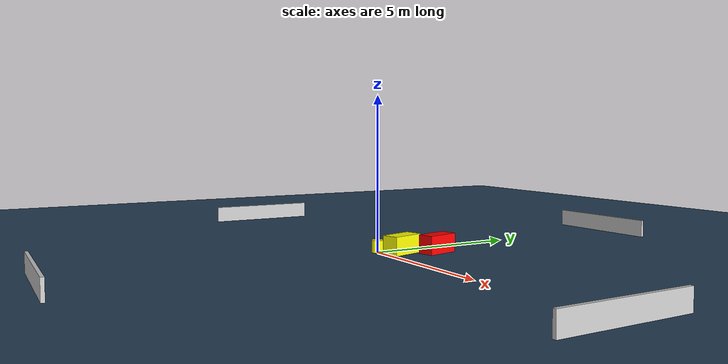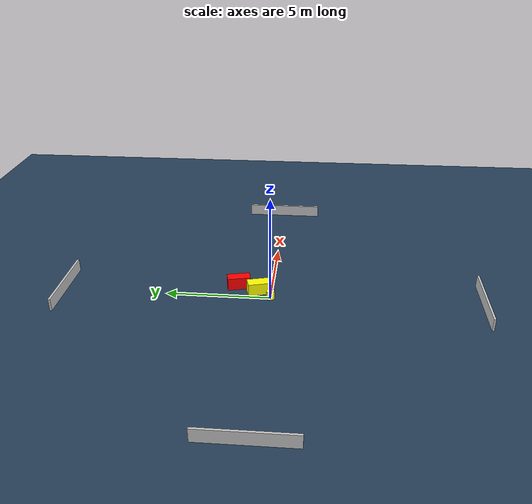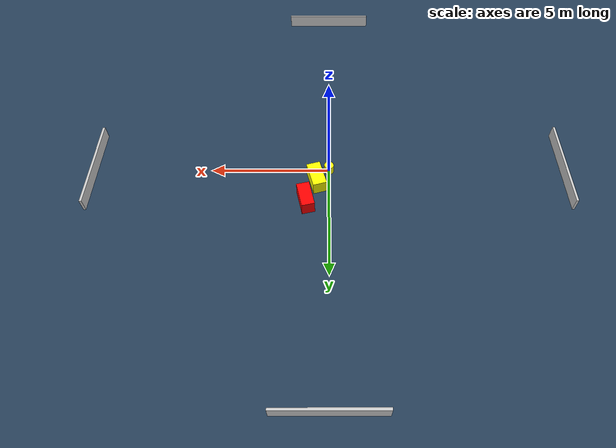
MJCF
<?xml version="1.0" ?>
<mujoco model="generated_environment">
  <option timestep="0.01" integrator="RK4" cone="elliptic"/>
  <default>
    <geom density="1"/>
  </default>
  <asset>
    <texture builtin="gradient" height="3072" name="skybox" rgb1="0.3 0.5 0.7" rgb2="0 0 0" type="skybox" width="512"/>
    <texture builtin="checker" height="300" name="groundplane" rgb1="0.2 0.3 0.4" rgb2="0.1 0.2 0.3" type="2d" width="300"/>
    <material name="groundplane" reflectance="0.2" texrepeat="5 5" texture="groundplane"/>
  </asset>
  <worldbody>
    <light dir="0 0 -1" directional="true" pos="0 0 1.5"/>
    <geom condim="3" friction="0.5 0.005 0.001" material="groundplane" name="floor" pos="0 0 0" size="0 0 0.05" type="plane"/>
    <body name="walls">
      <geom name="wall_1" condim="4" pos="-10.0 0.0 0.3" rgba="0.800000011920929 0.800000011920929 0.800000011920929 1.0" size="0.05 2.0 0.3" type="box"/>
      <geom name="wall_2" condim="4" pos="10.0 0.0 0.3" rgba="0.800000011920929 0.800000011920929 0.800000011920929 1.0" size="0.05 2.0 0.3" type="box"/>
      <geom name="wall_3" condim="4" pos="0.0 -10.0 0.3" rgba="0.800000011920929 0.800000011920929 0.800000011920929 1.0" size="2.0 0.05 0.3" type="box"/>
      <geom name="wall_4" condim="4" pos="0.0 10.0 0.3" rgba="0.800000011920929 0.800000011920929 0.800000011920929 1.0" size="2.0 0.05 0.3" type="box"/>
    </body>
    <body name="robot">
      <joint name="joint_x" type="slide" pos="0 0 0" axis="1 0 0"/>
      <joint name="joint_y" type="slide" pos="0 0 0" axis="0 1 0"/>
      <geom name="robot" type="cylinder" pos="0.0 0.0 0.2" size="0.2 0.2 0.0" mass="5.0" friction="1.0 0.005 0.0001" condim="4" rgba="1.0 1.0 0.0 1.0"/>
    </body>
    <body name="obstacle_1_movable">
      <geom name="obstacle_1_movable" condim="4" pos="0.5225950093715797 0.5868921376490047 0.3" euler="0 0 285.668314802716" friction="0.0 0.005 0.001" rgba="1.0 1.0 0.0 1.0" size="0.5640231175981647 0.2907914105238839 0.3" type="box" mass="0.1"/>
      <joint type="free"/>
    </body>
    <body name="obstacle_2_static">
      <geom name="obstacle_2_static" condim="4" pos="0.9634446051317456 1.6286467318243785 0.3" euler="0 0 193.03755154996134" friction="0.0 0.005 0.001" rgba="1.0 0.0 0.0 1.0" size="0.27013665674540477 0.5520392436096413 0.3" type="box"/>
    </body>
  </worldbody>
  <actuator>
    <motor name="actuator_x" joint="joint_x" gear="1" ctrlrange="-1 1"/>
    <motor name="actuator_y" joint="joint_y" gear="1" ctrlrange="-1 1"/>
  </actuator>
</mujoco>
